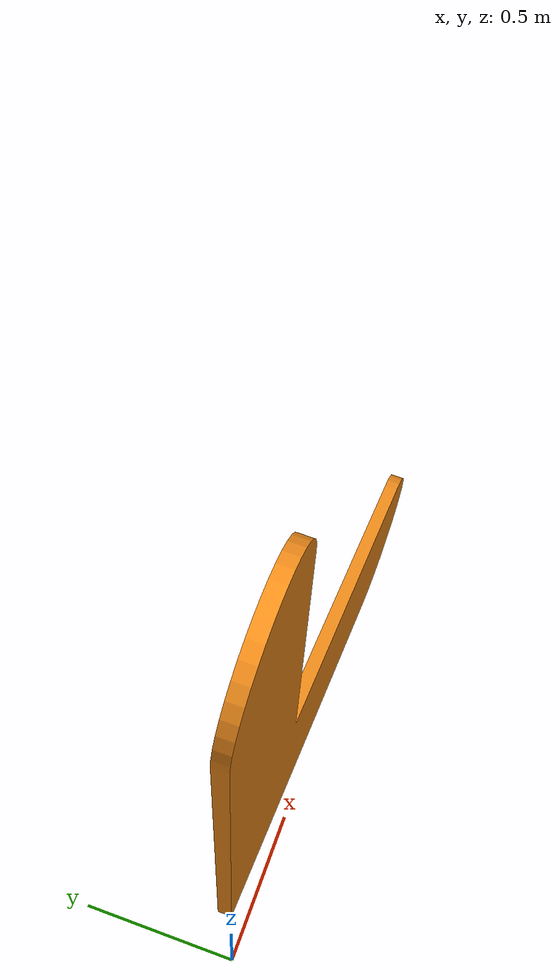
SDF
<?xml version="1.0" ?>
<sdf version="1.6">
  <model name="60deg">
    <static>true</static>
    <link name="link">
      <collision name="collision">
        <geometry>
          <mesh>
            <scale>1 1 1</scale>
            <uri>model://60deg/meshes/60deg.dae</uri>
          </mesh>
        </geometry>
      </collision>
      <visual name="visual">
        <geometry>
          <mesh>
            <scale>1 1 1</scale>
            <uri>model://60deg/meshes/60deg.dae</uri>
          </mesh>
        </geometry>
	<material>
	  <script>
            <uri>file://media/materials/scripts/gazebo.material</uri>
	    <name>Gazebo/Orange</name>
	  </script>
	</material>
      </visual>
    </link>
  </model>
</sdf>
